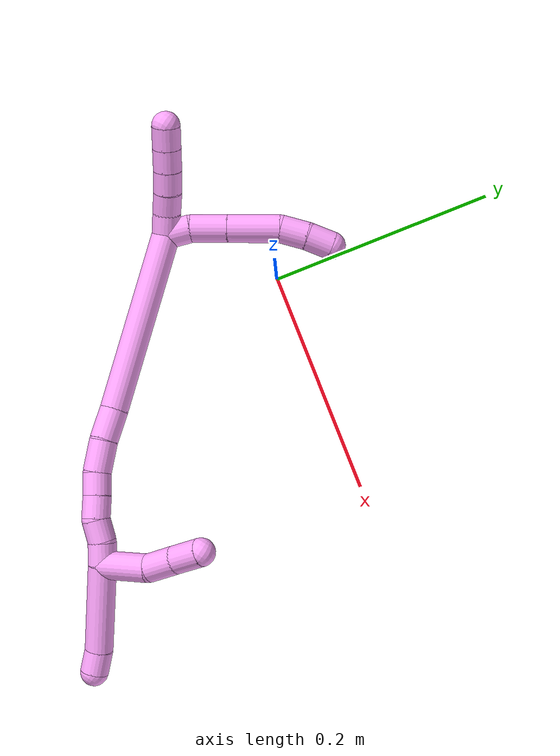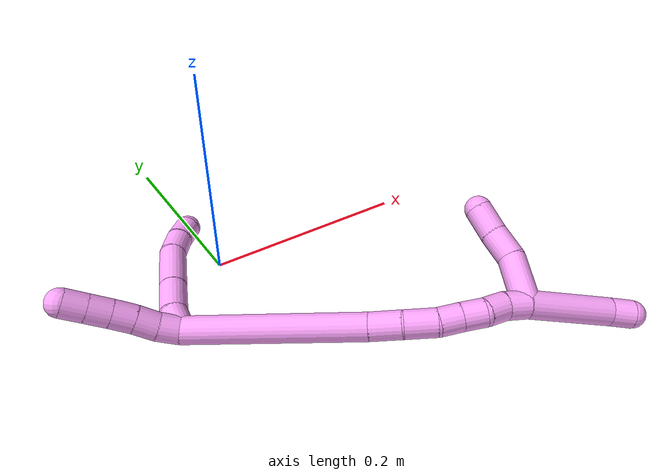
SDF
<sdf version="1.7">
 <world name="default">
  <model name="4">
   <static>0</static>
   <link name="4">
    <collision name="collision-cylinder-e_1_2_8">
     <pose>0.005518 0.005867 -0.008103 -2.51488 0.504012 -1.34289</pose>
     <geometry><cylinder><radius>0.0125</radius><length>0.02285</length></cylinder></geometry>
     <surface>
      <friction><ode><mu>1.16</mu><mu2>1.16</mu2><slip1>0</slip1><slip2>0</slip2></ode></friction>
      <contact><ode><kp>1e+06</kp><kd>1</kd><max_vel>0</max_vel><min_depth>0.001</min_depth></ode></contact>
     </surface>
    </collision>
    <visual name="visual-cylinder-e_1_2_8">
     <pose>0.005518 0.005867 -0.008103 -2.51488 0.504012 -1.34289</pose>
     <geometry><cylinder><radius>0.0125</radius><length>0.02285</length></cylinder></geometry>
     <material><ambient>1 0.65098 0.996078 1</ambient></material>
    </visual>
    <collision name="collision-cylinder-e_2_8_9">
     <pose>0.02141 0.02139 -0.024652 -2.28945 0.680093 -1.32421</pose>
     <geometry><cylinder><radius>0.0125</radius><length>0.032996</length></cylinder></geometry>
     <surface>
      <friction><ode><mu>1.16</mu><mu2>1.16</mu2><slip1>0</slip1><slip2>0</slip2></ode></friction>
      <contact><ode><kp>1e+06</kp><kd>1</kd><max_vel>0</max_vel><min_depth>0.001</min_depth></ode></contact>
     </surface>
    </collision>
    <visual name="visual-cylinder-e_2_8_9">
     <pose>0.02141 0.02139 -0.024652 -2.28945 0.680093 -1.32421</pose>
     <geometry><cylinder><radius>0.0125</radius><length>0.032996</length></cylinder></geometry>
     <material><ambient>1 0.65098 0.996078 1</ambient></material>
    </visual>
    <collision name="collision-cylinder-e_3_9_10">
     <pose>0.046791 0.044396 -0.044966 -2.29751 0.698645 -1.3631</pose>
     <geometry><cylinder><radius>0.0125</radius><length>0.04666</length></cylinder></geometry>
     <surface>
      <friction><ode><mu>1.16</mu><mu2>1.16</mu2><slip1>0</slip1><slip2>0</slip2></ode></friction>
      <contact><ode><kp>1e+06</kp><kd>1</kd><max_vel>0</max_vel><min_depth>0.001</min_depth></ode></contact>
     </surface>
    </collision>
    <visual name="visual-cylinder-e_3_9_10">
     <pose>0.046791 0.044396 -0.044966 -2.29751 0.698645 -1.3631</pose>
     <geometry><cylinder><radius>0.0125</radius><length>0.04666</length></cylinder></geometry>
     <material><ambient>1 0.65098 0.996078 1</ambient></material>
    </visual>
    <collision name="collision-cylinder-e_4_10_11">
     <pose>0.071285 0.064374 -0.060378 -2.06176 0.901016 -1.35806</pose>
     <geometry><cylinder><radius>0.0125</radius><length>0.024207</length></cylinder></geometry>
     <surface>
      <friction><ode><mu>1.16</mu><mu2>1.16</mu2><slip1>0</slip1><slip2>0</slip2></ode></friction>
      <contact><ode><kp>1e+06</kp><kd>1</kd><max_vel>0</max_vel><min_depth>0.001</min_depth></ode></contact>
     </surface>
    </collision>
    <visual name="visual-cylinder-e_4_10_11">
     <pose>0.071285 0.064374 -0.060378 -2.06176 0.901016 -1.35806</pose>
     <geometry><cylinder><radius>0.0125</radius><length>0.024207</length></cylinder></geometry>
     <material><ambient>1 0.65098 0.996078 1</ambient></material>
    </visual>
    <collision name="collision-cylinder-e_5_11_6">
     <pose>0.090787 0.076422 -0.066347 -1.99158 1.03537 -1.44192</pose>
     <geometry><cylinder><radius>0.0125</radius><length>0.023287</length></cylinder></geometry>
     <surface>
      <friction><ode><mu>1.16</mu><mu2>1.16</mu2><slip1>0</slip1><slip2>0</slip2></ode></friction>
      <contact><ode><kp>1e+06</kp><kd>1</kd><max_vel>0</max_vel><min_depth>0.001</min_depth></ode></contact>
     </surface>
    </collision>
    <visual name="visual-cylinder-e_5_11_6">
     <pose>0.090787 0.076422 -0.066347 -1.99158 1.03537 -1.44192</pose>
     <geometry><cylinder><radius>0.0125</radius><length>0.023287</length></cylinder></geometry>
     <material><ambient>1 0.65098 0.996078 1</ambient></material>
    </visual>
    <collision name="collision-cylinder-e_1_2_12">
     <pose>-0.006342 0.001585 -0.007567 -2.9351 -0.686997 2.57766</pose>
     <geometry><cylinder><radius>0.0125</radius><length>0.02</length></cylinder></geometry>
     <surface>
      <friction><ode><mu>1.16</mu><mu2>1.16</mu2><slip1>0</slip1><slip2>0</slip2></ode></friction>
      <contact><ode><kp>1e+06</kp><kd>1</kd><max_vel>0</max_vel><min_depth>0.001</min_depth></ode></contact>
     </surface>
    </collision>
    <visual name="visual-cylinder-e_1_2_12">
     <pose>-0.006342 0.001585 -0.007567 -2.9351 -0.686997 2.57766</pose>
     <geometry><cylinder><radius>0.0125</radius><length>0.02</length></cylinder></geometry>
     <material><ambient>1 0.65098 0.996078 1</ambient></material>
    </visual>
    <collision name="collision-cylinder-e_2_12_13">
     <pose>-0.019283 0.006374 -0.021931 -2.70114 -0.720693 2.06946</pose>
     <geometry><cylinder><radius>0.0125</radius><length>0.02</length></cylinder></geometry>
     <surface>
      <friction><ode><mu>1.16</mu><mu2>1.16</mu2><slip1>0</slip1><slip2>0</slip2></ode></friction>
      <contact><ode><kp>1e+06</kp><kd>1</kd><max_vel>0</max_vel><min_depth>0.001</min_depth></ode></contact>
     </surface>
    </collision>
    <visual name="visual-cylinder-e_2_12_13">
     <pose>-0.019283 0.006374 -0.021931 -2.70114 -0.720693 2.06946</pose>
     <geometry><cylinder><radius>0.0125</radius><length>0.02</length></cylinder></geometry>
     <material><ambient>1 0.65098 0.996078 1</ambient></material>
    </visual>
    <collision name="collision-cylinder-e_3_13_14">
     <pose>-0.032772 0.012052 -0.035539 -2.79313 -0.760099 2.31154</pose>
     <geometry><cylinder><radius>0.0125</radius><length>0.02</length></cylinder></geometry>
     <surface>
      <friction><ode><mu>1.16</mu><mu2>1.16</mu2><slip1>0</slip1><slip2>0</slip2></ode></friction>
      <contact><ode><kp>1e+06</kp><kd>1</kd><max_vel>0</max_vel><min_depth>0.001</min_depth></ode></contact>
     </surface>
    </collision>
    <visual name="visual-cylinder-e_3_13_14">
     <pose>-0.032772 0.012052 -0.035539 -2.79313 -0.760099 2.31154</pose>
     <geometry><cylinder><radius>0.0125</radius><length>0.02</length></cylinder></geometry>
     <material><ambient>1 0.65098 0.996078 1</ambient></material>
    </visual>
    <collision name="collision-cylinder-e_4_14_15">
     <pose>-0.046746 0.016818 -0.049028 -2.81101 -0.787202 2.37766</pose>
     <geometry><cylinder><radius>0.0125</radius><length>0.02</length></cylinder></geometry>
     <surface>
      <friction><ode><mu>1.16</mu><mu2>1.16</mu2><slip1>0</slip1><slip2>0</slip2></ode></friction>
      <contact><ode><kp>1e+06</kp><kd>1</kd><max_vel>0</max_vel><min_depth>0.001</min_depth></ode></contact>
     </surface>
    </collision>
    <visual name="visual-cylinder-e_4_14_15">
     <pose>-0.046746 0.016818 -0.049028 -2.81101 -0.787202 2.37766</pose>
     <geometry><cylinder><radius>0.0125</radius><length>0.02</length></cylinder></geometry>
     <material><ambient>1 0.65098 0.996078 1</ambient></material>
    </visual>
    <collision name="collision-cylinder-e_5_15_5">
     <pose>-0.060922 0.021392 -0.062373 -2.81167 -0.788436 2.38027</pose>
     <geometry><cylinder><radius>0.0125</radius><length>0.02</length></cylinder></geometry>
     <surface>
      <friction><ode><mu>1.16</mu><mu2>1.16</mu2><slip1>0</slip1><slip2>0</slip2></ode></friction>
      <contact><ode><kp>1e+06</kp><kd>1</kd><max_vel>0</max_vel><min_depth>0.001</min_depth></ode></contact>
     </surface>
    </collision>
    <visual name="visual-cylinder-e_5_15_5">
     <pose>-0.060922 0.021392 -0.062373 -2.81167 -0.788436 2.38027</pose>
     <geometry><cylinder><radius>0.0125</radius><length>0.02</length></cylinder></geometry>
     <material><ambient>1 0.65098 0.996078 1</ambient></material>
    </visual>
    <collision name="collision-cylinder-e_1_2_16">
     <pose>0.022042 0.007733 0.077311 -0.099689 0.276429 -0.013878</pose>
     <geometry><cylinder><radius>0.0125</radius><length>0.161525</length></cylinder></geometry>
     <surface>
      <friction><ode><mu>1.16</mu><mu2>1.16</mu2><slip1>0</slip1><slip2>0</slip2></ode></friction>
      <contact><ode><kp>1e+06</kp><kd>1</kd><max_vel>0</max_vel><min_depth>0.001</min_depth></ode></contact>
     </surface>
    </collision>
    <visual name="visual-cylinder-e_1_2_16">
     <pose>0.022042 0.007733 0.077311 -0.099689 0.276429 -0.013878</pose>
     <geometry><cylinder><radius>0.0125</radius><length>0.161525</length></cylinder></geometry>
     <material><ambient>1 0.65098 0.996078 1</ambient></material>
    </visual>
    <collision name="collision-cylinder-e_2_16_17">
     <pose>0.046996 0.017622 0.168459 -0.154619 0.20501 -0.015936</pose>
     <geometry><cylinder><radius>0.0125</radius><length>0.028608</length></cylinder></geometry>
     <surface>
      <friction><ode><mu>1.16</mu><mu2>1.16</mu2><slip1>0</slip1><slip2>0</slip2></ode></friction>
      <contact><ode><kp>1e+06</kp><kd>1</kd><max_vel>0</max_vel><min_depth>0.001</min_depth></ode></contact>
     </surface>
    </collision>
    <visual name="visual-cylinder-e_2_16_17">
     <pose>0.046996 0.017622 0.168459 -0.154619 0.20501 -0.015936</pose>
     <geometry><cylinder><radius>0.0125</radius><length>0.028608</length></cylinder></geometry>
     <material><ambient>1 0.65098 0.996078 1</ambient></material>
    </visual>
    <collision name="collision-cylinder-e_3_17_18">
     <pose>0.054867 0.021567 0.195561 -0.133973 0.354852 -0.024058</pose>
     <geometry><cylinder><radius>0.0125</radius><length>0.028548</length></cylinder></geometry>
     <surface>
      <friction><ode><mu>1.16</mu><mu2>1.16</mu2><slip1>0</slip1><slip2>0</slip2></ode></friction>
      <contact><ode><kp>1e+06</kp><kd>1</kd><max_vel>0</max_vel><min_depth>0.001</min_depth></ode></contact>
     </surface>
    </collision>
    <visual name="visual-cylinder-e_3_17_18">
     <pose>0.054867 0.021567 0.195561 -0.133973 0.354852 -0.024058</pose>
     <geometry><cylinder><radius>0.0125</radius><length>0.028548</length></cylinder></geometry>
     <material><ambient>1 0.65098 0.996078 1</ambient></material>
    </visual>
    <collision name="collision-cylinder-e_4_18_19">
     <pose>0.06475 0.025914 0.217271 -0.294239 0.508929 -0.077051</pose>
     <geometry><cylinder><radius>0.0125</radius><length>0.02021</length></cylinder></geometry>
     <surface>
      <friction><ode><mu>1.16</mu><mu2>1.16</mu2><slip1>0</slip1><slip2>0</slip2></ode></friction>
      <contact><ode><kp>1e+06</kp><kd>1</kd><max_vel>0</max_vel><min_depth>0.001</min_depth></ode></contact>
     </surface>
    </collision>
    <visual name="visual-cylinder-e_4_18_19">
     <pose>0.06475 0.025914 0.217271 -0.294239 0.508929 -0.077051</pose>
     <geometry><cylinder><radius>0.0125</radius><length>0.02021</length></cylinder></geometry>
     <material><ambient>1 0.65098 0.996078 1</ambient></material>
    </visual>
    <collision name="collision-cylinder-e_5_19_20">
     <pose>0.074185 0.030873 0.234564 -0.264863 0.457317 -0.061984</pose>
     <geometry><cylinder><radius>0.0125</radius><length>0.020434</length></cylinder></geometry>
     <surface>
      <friction><ode><mu>1.16</mu><mu2>1.16</mu2><slip1>0</slip1><slip2>0</slip2></ode></friction>
      <contact><ode><kp>1e+06</kp><kd>1</kd><max_vel>0</max_vel><min_depth>0.001</min_depth></ode></contact>
     </surface>
    </collision>
    <visual name="visual-cylinder-e_5_19_20">
     <pose>0.074185 0.030873 0.234564 -0.264863 0.457317 -0.061984</pose>
     <geometry><cylinder><radius>0.0125</radius><length>0.020434</length></cylinder></geometry>
     <material><ambient>1 0.65098 0.996078 1</ambient></material>
    </visual>
    <collision name="collision-cylinder-e_6_20_21">
     <pose>0.085889 0.035843 0.249978 -0.373129 0.795273 -0.158231</pose>
     <geometry><cylinder><radius>0.0125</radius><length>0.020145</length></cylinder></geometry>
     <surface>
      <friction><ode><mu>1.16</mu><mu2>1.16</mu2><slip1>0</slip1><slip2>0</slip2></ode></friction>
      <contact><ode><kp>1e+06</kp><kd>1</kd><max_vel>0</max_vel><min_depth>0.001</min_depth></ode></contact>
     </surface>
    </collision>
    <visual name="visual-cylinder-e_6_20_21">
     <pose>0.085889 0.035843 0.249978 -0.373129 0.795273 -0.158231</pose>
     <geometry><cylinder><radius>0.0125</radius><length>0.020145</length></cylinder></geometry>
     <material><ambient>1 0.65098 0.996078 1</ambient></material>
    </visual>
    <collision name="collision-cylinder-e_7_21_1">
     <pose>0.09897 0.039335 0.264901 -0.109845 0.611016 -0.034675</pose>
     <geometry><cylinder><radius>0.0125</radius><length>0.020529</length></cylinder></geometry>
     <surface>
      <friction><ode><mu>1.16</mu><mu2>1.16</mu2><slip1>0</slip1><slip2>0</slip2></ode></friction>
      <contact><ode><kp>1e+06</kp><kd>1</kd><max_vel>0</max_vel><min_depth>0.001</min_depth></ode></contact>
     </surface>
    </collision>
    <visual name="visual-cylinder-e_7_21_1">
     <pose>0.09897 0.039335 0.264901 -0.109845 0.611016 -0.034675</pose>
     <geometry><cylinder><radius>0.0125</radius><length>0.020529</length></cylinder></geometry>
     <material><ambient>1 0.65098 0.996078 1</ambient></material>
    </visual>
    <collision name="collision-cylinder-e_1_1_22">
     <pose>0.128129 0.037884 0.305179 0.074198 0.62861 0.02413</pose>
     <geometry><cylinder><radius>0.0125</radius><length>0.079149</length></cylinder></geometry>
     <surface>
      <friction><ode><mu>1.16</mu><mu2>1.16</mu2><slip1>0</slip1><slip2>0</slip2></ode></friction>
      <contact><ode><kp>1e+06</kp><kd>1</kd><max_vel>0</max_vel><min_depth>0.001</min_depth></ode></contact>
     </surface>
    </collision>
    <visual name="visual-cylinder-e_1_1_22">
     <pose>0.128129 0.037884 0.305179 0.074198 0.62861 0.02413</pose>
     <geometry><cylinder><radius>0.0125</radius><length>0.079149</length></cylinder></geometry>
     <material><ambient>1 0.65098 0.996078 1</ambient></material>
    </visual>
    <collision name="collision-cylinder-e_2_22_4">
     <pose>0.156031 0.034854 0.346419 0.07038 0.460241 0.016494</pose>
     <geometry><cylinder><radius>0.0125</radius><length>0.020851</length></cylinder></geometry>
     <surface>
      <friction><ode><mu>1.16</mu><mu2>1.16</mu2><slip1>0</slip1><slip2>0</slip2></ode></friction>
      <contact><ode><kp>1e+06</kp><kd>1</kd><max_vel>0</max_vel><min_depth>0.001</min_depth></ode></contact>
     </surface>
    </collision>
    <visual name="visual-cylinder-e_2_22_4">
     <pose>0.156031 0.034854 0.346419 0.07038 0.460241 0.016494</pose>
     <geometry><cylinder><radius>0.0125</radius><length>0.020851</length></cylinder></geometry>
     <material><ambient>1 0.65098 0.996078 1</ambient></material>
    </visual>
    <collision name="collision-cylinder-e_1_1_23">
     <pose>0.114466 0.058724 0.264109 -2.03078 0.436218 -0.686058</pose>
     <geometry><cylinder><radius>0.0125</radius><length>0.045476</length></cylinder></geometry>
     <surface>
      <friction><ode><mu>1.16</mu><mu2>1.16</mu2><slip1>0</slip1><slip2>0</slip2></ode></friction>
      <contact><ode><kp>1e+06</kp><kd>1</kd><max_vel>0</max_vel><min_depth>0.001</min_depth></ode></contact>
     </surface>
    </collision>
    <visual name="visual-cylinder-e_1_1_23">
     <pose>0.114466 0.058724 0.264109 -2.03078 0.436218 -0.686058</pose>
     <geometry><cylinder><radius>0.0125</radius><length>0.045476</length></cylinder></geometry>
     <material><ambient>1 0.65098 0.996078 1</ambient></material>
    </visual>
    <collision name="collision-cylinder-e_2_23_24">
     <pose>0.127223 0.086977 0.246005 -2.31186 0.233119 -0.519687</pose>
     <geometry><cylinder><radius>0.0125</radius><length>0.027268</length></cylinder></geometry>
     <surface>
      <friction><ode><mu>1.16</mu><mu2>1.16</mu2><slip1>0</slip1><slip2>0</slip2></ode></friction>
      <contact><ode><kp>1e+06</kp><kd>1</kd><max_vel>0</max_vel><min_depth>0.001</min_depth></ode></contact>
     </surface>
    </collision>
    <visual name="visual-cylinder-e_2_23_24">
     <pose>0.127223 0.086977 0.246005 -2.31186 0.233119 -0.519687</pose>
     <geometry><cylinder><radius>0.0125</radius><length>0.027268</length></cylinder></geometry>
     <material><ambient>1 0.65098 0.996078 1</ambient></material>
    </visual>
    <collision name="collision-cylinder-e_3_24_3">
     <pose>0.132469 0.107459 0.228869 -2.22372 0.154437 -0.310647</pose>
     <geometry><cylinder><radius>0.0125</radius><length>0.027255</length></cylinder></geometry>
     <surface>
      <friction><ode><mu>1.16</mu><mu2>1.16</mu2><slip1>0</slip1><slip2>0</slip2></ode></friction>
      <contact><ode><kp>1e+06</kp><kd>1</kd><max_vel>0</max_vel><min_depth>0.001</min_depth></ode></contact>
     </surface>
    </collision>
    <visual name="visual-cylinder-e_3_24_3">
     <pose>0.132469 0.107459 0.228869 -2.22372 0.154437 -0.310647</pose>
     <geometry><cylinder><radius>0.0125</radius><length>0.027255</length></cylinder></geometry>
     <material><ambient>1 0.65098 0.996078 1</ambient></material>
    </visual>
    <collision name="collision-sphere-3">
     <pose>0.134565 0.118155 0.220689 0 -0 0</pose>
     <geometry><sphere><radius>0.0125</radius></sphere></geometry>
     <surface>
      <friction><ode><mu>1.16</mu><mu2>1.16</mu2><slip1>0</slip1><slip2>0</slip2></ode></friction>
      <contact><ode><kp>1e+06</kp><kd>1</kd><max_vel>0</max_vel><min_depth>0.001</min_depth></ode></contact>
     </surface>
    </collision>
    <visual name="visual-sphere-3">
     <pose>0.134565 0.118155 0.220689 0 -0 0</pose>
     <geometry><sphere><radius>0.0125</radius></sphere></geometry>
     <material><ambient>1 0.65098 0.996078 1</ambient></material>
    </visual>
    <collision name="collision-sphere-24">
     <pose>0.130373 0.096764 0.23705 0 -0 0</pose>
     <geometry><sphere><radius>0.0125</radius></sphere></geometry>
     <surface>
      <friction><ode><mu>1.16</mu><mu2>1.16</mu2><slip1>0</slip1><slip2>0</slip2></ode></friction>
      <contact><ode><kp>1e+06</kp><kd>1</kd><max_vel>0</max_vel><min_depth>0.001</min_depth></ode></contact>
     </surface>
    </collision>
    <visual name="visual-sphere-24">
     <pose>0.130373 0.096764 0.23705 0 -0 0</pose>
     <geometry><sphere><radius>0.0125</radius></sphere></geometry>
     <material><ambient>1 0.65098 0.996078 1</ambient></material>
    </visual>
    <collision name="collision-sphere-23">
     <pose>0.124073 0.07719 0.25496 0 -0 0</pose>
     <geometry><sphere><radius>0.0125</radius></sphere></geometry>
     <surface>
      <friction><ode><mu>1.16</mu><mu2>1.16</mu2><slip1>0</slip1><slip2>0</slip2></ode></friction>
      <contact><ode><kp>1e+06</kp><kd>1</kd><max_vel>0</max_vel><min_depth>0.001</min_depth></ode></contact>
     </surface>
    </collision>
    <visual name="visual-sphere-23">
     <pose>0.124073 0.07719 0.25496 0 -0 0</pose>
     <geometry><sphere><radius>0.0125</radius></sphere></geometry>
     <material><ambient>1 0.65098 0.996078 1</ambient></material>
    </visual>
    <collision name="collision-sphere-4">
     <pose>0.160661 0.034197 0.355736 0 -0 0</pose>
     <geometry><sphere><radius>0.0125</radius></sphere></geometry>
     <surface>
      <friction><ode><mu>1.16</mu><mu2>1.16</mu2><slip1>0</slip1><slip2>0</slip2></ode></friction>
      <contact><ode><kp>1e+06</kp><kd>1</kd><max_vel>0</max_vel><min_depth>0.001</min_depth></ode></contact>
     </surface>
    </collision>
    <visual name="visual-sphere-4">
     <pose>0.160661 0.034197 0.355736 0 -0 0</pose>
     <geometry><sphere><radius>0.0125</radius></sphere></geometry>
     <material><ambient>1 0.65098 0.996078 1</ambient></material>
    </visual>
    <collision name="collision-sphere-22">
     <pose>0.1514 0.035511 0.337101 0 -0 0</pose>
     <geometry><sphere><radius>0.0125</radius></sphere></geometry>
     <surface>
      <friction><ode><mu>1.16</mu><mu2>1.16</mu2><slip1>0</slip1><slip2>0</slip2></ode></friction>
      <contact><ode><kp>1e+06</kp><kd>1</kd><max_vel>0</max_vel><min_depth>0.001</min_depth></ode></contact>
     </surface>
    </collision>
    <visual name="visual-sphere-22">
     <pose>0.1514 0.035511 0.337101 0 -0 0</pose>
     <geometry><sphere><radius>0.0125</radius></sphere></geometry>
     <material><ambient>1 0.65098 0.996078 1</ambient></material>
    </visual>
    <collision name="collision-sphere-1">
     <pose>0.104859 0.040257 0.273258 0 -0 0</pose>
     <geometry><sphere><radius>0.0125</radius></sphere></geometry>
     <surface>
      <friction><ode><mu>1.16</mu><mu2>1.16</mu2><slip1>0</slip1><slip2>0</slip2></ode></friction>
      <contact><ode><kp>1e+06</kp><kd>1</kd><max_vel>0</max_vel><min_depth>0.001</min_depth></ode></contact>
     </surface>
    </collision>
    <visual name="visual-sphere-1">
     <pose>0.104859 0.040257 0.273258 0 -0 0</pose>
     <geometry><sphere><radius>0.0125</radius></sphere></geometry>
     <material><ambient>1 0.65098 0.996078 1</ambient></material>
    </visual>
    <collision name="collision-sphere-21">
     <pose>0.093081 0.038413 0.256544 0 -0 0</pose>
     <geometry><sphere><radius>0.0125</radius></sphere></geometry>
     <surface>
      <friction><ode><mu>1.16</mu><mu2>1.16</mu2><slip1>0</slip1><slip2>0</slip2></ode></friction>
      <contact><ode><kp>1e+06</kp><kd>1</kd><max_vel>0</max_vel><min_depth>0.001</min_depth></ode></contact>
     </surface>
    </collision>
    <visual name="visual-sphere-21">
     <pose>0.093081 0.038413 0.256544 0 -0 0</pose>
     <geometry><sphere><radius>0.0125</radius></sphere></geometry>
     <material><ambient>1 0.65098 0.996078 1</ambient></material>
    </visual>
    <collision name="collision-sphere-6">
     <pose>0.100801 0.081845 -0.068774 0 -0 0</pose>
     <geometry><sphere><radius>0.0125</radius></sphere></geometry>
     <surface>
      <friction><ode><mu>1.16</mu><mu2>1.16</mu2><slip1>0</slip1><slip2>0</slip2></ode></friction>
      <contact><ode><kp>1e+06</kp><kd>1</kd><max_vel>0</max_vel><min_depth>0.001</min_depth></ode></contact>
     </surface>
    </collision>
    <visual name="visual-sphere-6">
     <pose>0.100801 0.081845 -0.068774 0 -0 0</pose>
     <geometry><sphere><radius>0.0125</radius></sphere></geometry>
     <material><ambient>1 0.65098 0.996078 1</ambient></material>
    </visual>
    <collision name="collision-sphere-11">
     <pose>0.080773 0.071 -0.06392 0 -0 0</pose>
     <geometry><sphere><radius>0.0125</radius></sphere></geometry>
     <surface>
      <friction><ode><mu>1.16</mu><mu2>1.16</mu2><slip1>0</slip1><slip2>0</slip2></ode></friction>
      <contact><ode><kp>1e+06</kp><kd>1</kd><max_vel>0</max_vel><min_depth>0.001</min_depth></ode></contact>
     </surface>
    </collision>
    <visual name="visual-sphere-11">
     <pose>0.080773 0.071 -0.06392 0 -0 0</pose>
     <geometry><sphere><radius>0.0125</radius></sphere></geometry>
     <material><ambient>1 0.65098 0.996078 1</ambient></material>
    </visual>
    <collision name="collision-sphere-10">
     <pose>0.061796 0.057747 -0.056835 0 -0 0</pose>
     <geometry><sphere><radius>0.0125</radius></sphere></geometry>
     <surface>
      <friction><ode><mu>1.16</mu><mu2>1.16</mu2><slip1>0</slip1><slip2>0</slip2></ode></friction>
      <contact><ode><kp>1e+06</kp><kd>1</kd><max_vel>0</max_vel><min_depth>0.001</min_depth></ode></contact>
     </surface>
    </collision>
    <visual name="visual-sphere-10">
     <pose>0.061796 0.057747 -0.056835 0 -0 0</pose>
     <geometry><sphere><radius>0.0125</radius></sphere></geometry>
     <material><ambient>1 0.65098 0.996078 1</ambient></material>
    </visual>
    <collision name="collision-sphere-9">
     <pose>0.031786 0.031045 -0.033097 0 -0 0</pose>
     <geometry><sphere><radius>0.0125</radius></sphere></geometry>
     <surface>
      <friction><ode><mu>1.16</mu><mu2>1.16</mu2><slip1>0</slip1><slip2>0</slip2></ode></friction>
      <contact><ode><kp>1e+06</kp><kd>1</kd><max_vel>0</max_vel><min_depth>0.001</min_depth></ode></contact>
     </surface>
    </collision>
    <visual name="visual-sphere-9">
     <pose>0.031786 0.031045 -0.033097 0 -0 0</pose>
     <geometry><sphere><radius>0.0125</radius></sphere></geometry>
     <material><ambient>1 0.65098 0.996078 1</ambient></material>
    </visual>
    <collision name="collision-sphere-2">
     <geometry><sphere><radius>0.0125</radius></sphere></geometry>
     <surface>
      <friction><ode><mu>1.16</mu><mu2>1.16</mu2><slip1>0</slip1><slip2>0</slip2></ode></friction>
      <contact><ode><kp>1e+06</kp><kd>1</kd><max_vel>0</max_vel><min_depth>0.001</min_depth></ode></contact>
     </surface>
    </collision>
    <visual name="visual-sphere-2">
     <geometry><sphere><radius>0.0125</radius></sphere></geometry>
     <material><ambient>1 0.65098 0.996078 1</ambient></material>
    </visual>
    <collision name="collision-sphere-19">
     <pose>0.069674 0.028473 0.225716 0 -0 0</pose>
     <geometry><sphere><radius>0.0125</radius></sphere></geometry>
     <surface>
      <friction><ode><mu>1.16</mu><mu2>1.16</mu2><slip1>0</slip1><slip2>0</slip2></ode></friction>
      <contact><ode><kp>1e+06</kp><kd>1</kd><max_vel>0</max_vel><min_depth>0.001</min_depth></ode></contact>
     </surface>
    </collision>
    <visual name="visual-sphere-19">
     <pose>0.069674 0.028473 0.225716 0 -0 0</pose>
     <geometry><sphere><radius>0.0125</radius></sphere></geometry>
     <material><ambient>1 0.65098 0.996078 1</ambient></material>
    </visual>
    <collision name="collision-sphere-8">
     <pose>0.011035 0.011735 -0.016206 0 -0 0</pose>
     <geometry><sphere><radius>0.0125</radius></sphere></geometry>
     <surface>
      <friction><ode><mu>1.16</mu><mu2>1.16</mu2><slip1>0</slip1><slip2>0</slip2></ode></friction>
      <contact><ode><kp>1e+06</kp><kd>1</kd><max_vel>0</max_vel><min_depth>0.001</min_depth></ode></contact>
     </surface>
    </collision>
    <visual name="visual-sphere-8">
     <pose>0.011035 0.011735 -0.016206 0 -0 0</pose>
     <geometry><sphere><radius>0.0125</radius></sphere></geometry>
     <material><ambient>1 0.65098 0.996078 1</ambient></material>
    </visual>
    <collision name="collision-sphere-12">
     <pose>-0.012684 0.00317 -0.015135 0 -0 0</pose>
     <geometry><sphere><radius>0.0125</radius></sphere></geometry>
     <surface>
      <friction><ode><mu>1.16</mu><mu2>1.16</mu2><slip1>0</slip1><slip2>0</slip2></ode></friction>
      <contact><ode><kp>1e+06</kp><kd>1</kd><max_vel>0</max_vel><min_depth>0.001</min_depth></ode></contact>
     </surface>
    </collision>
    <visual name="visual-sphere-12">
     <pose>-0.012684 0.00317 -0.015135 0 -0 0</pose>
     <geometry><sphere><radius>0.0125</radius></sphere></geometry>
     <material><ambient>1 0.65098 0.996078 1</ambient></material>
    </visual>
    <collision name="collision-sphere-13">
     <pose>-0.025882 0.009577 -0.028727 0 -0 0</pose>
     <geometry><sphere><radius>0.0125</radius></sphere></geometry>
     <surface>
      <friction><ode><mu>1.16</mu><mu2>1.16</mu2><slip1>0</slip1><slip2>0</slip2></ode></friction>
      <contact><ode><kp>1e+06</kp><kd>1</kd><max_vel>0</max_vel><min_depth>0.001</min_depth></ode></contact>
     </surface>
    </collision>
    <visual name="visual-sphere-13">
     <pose>-0.025882 0.009577 -0.028727 0 -0 0</pose>
     <geometry><sphere><radius>0.0125</radius></sphere></geometry>
     <material><ambient>1 0.65098 0.996078 1</ambient></material>
    </visual>
    <collision name="collision-sphere-14">
     <pose>-0.039662 0.014526 -0.042352 0 -0 0</pose>
     <geometry><sphere><radius>0.0125</radius></sphere></geometry>
     <surface>
      <friction><ode><mu>1.16</mu><mu2>1.16</mu2><slip1>0</slip1><slip2>0</slip2></ode></friction>
      <contact><ode><kp>1e+06</kp><kd>1</kd><max_vel>0</max_vel><min_depth>0.001</min_depth></ode></contact>
     </surface>
    </collision>
    <visual name="visual-sphere-14">
     <pose>-0.039662 0.014526 -0.042352 0 -0 0</pose>
     <geometry><sphere><radius>0.0125</radius></sphere></geometry>
     <material><ambient>1 0.65098 0.996078 1</ambient></material>
    </visual>
    <collision name="collision-sphere-15">
     <pose>-0.05383 0.019109 -0.055704 0 -0 0</pose>
     <geometry><sphere><radius>0.0125</radius></sphere></geometry>
     <surface>
      <friction><ode><mu>1.16</mu><mu2>1.16</mu2><slip1>0</slip1><slip2>0</slip2></ode></friction>
      <contact><ode><kp>1e+06</kp><kd>1</kd><max_vel>0</max_vel><min_depth>0.001</min_depth></ode></contact>
     </surface>
    </collision>
    <visual name="visual-sphere-15">
     <pose>-0.05383 0.019109 -0.055704 0 -0 0</pose>
     <geometry><sphere><radius>0.0125</radius></sphere></geometry>
     <material><ambient>1 0.65098 0.996078 1</ambient></material>
    </visual>
    <collision name="collision-sphere-5">
     <pose>-0.068015 0.023676 -0.069043 0 -0 0</pose>
     <geometry><sphere><radius>0.0125</radius></sphere></geometry>
     <surface>
      <friction><ode><mu>1.16</mu><mu2>1.16</mu2><slip1>0</slip1><slip2>0</slip2></ode></friction>
      <contact><ode><kp>1e+06</kp><kd>1</kd><max_vel>0</max_vel><min_depth>0.001</min_depth></ode></contact>
     </surface>
    </collision>
    <visual name="visual-sphere-5">
     <pose>-0.068015 0.023676 -0.069043 0 -0 0</pose>
     <geometry><sphere><radius>0.0125</radius></sphere></geometry>
     <material><ambient>1 0.65098 0.996078 1</ambient></material>
    </visual>
    <collision name="collision-sphere-16">
     <pose>0.044084 0.015465 0.154622 0 -0 0</pose>
     <geometry><sphere><radius>0.0125</radius></sphere></geometry>
     <surface>
      <friction><ode><mu>1.16</mu><mu2>1.16</mu2><slip1>0</slip1><slip2>0</slip2></ode></friction>
      <contact><ode><kp>1e+06</kp><kd>1</kd><max_vel>0</max_vel><min_depth>0.001</min_depth></ode></contact>
     </surface>
    </collision>
    <visual name="visual-sphere-16">
     <pose>0.044084 0.015465 0.154622 0 -0 0</pose>
     <geometry><sphere><radius>0.0125</radius></sphere></geometry>
     <material><ambient>1 0.65098 0.996078 1</ambient></material>
    </visual>
    <collision name="collision-sphere-17">
     <pose>0.049908 0.019779 0.182296 0 -0 0</pose>
     <geometry><sphere><radius>0.0125</radius></sphere></geometry>
     <surface>
      <friction><ode><mu>1.16</mu><mu2>1.16</mu2><slip1>0</slip1><slip2>0</slip2></ode></friction>
      <contact><ode><kp>1e+06</kp><kd>1</kd><max_vel>0</max_vel><min_depth>0.001</min_depth></ode></contact>
     </surface>
    </collision>
    <visual name="visual-sphere-17">
     <pose>0.049908 0.019779 0.182296 0 -0 0</pose>
     <geometry><sphere><radius>0.0125</radius></sphere></geometry>
     <material><ambient>1 0.65098 0.996078 1</ambient></material>
    </visual>
    <collision name="collision-sphere-18">
     <pose>0.059827 0.023354 0.208826 0 -0 0</pose>
     <geometry><sphere><radius>0.0125</radius></sphere></geometry>
     <surface>
      <friction><ode><mu>1.16</mu><mu2>1.16</mu2><slip1>0</slip1><slip2>0</slip2></ode></friction>
      <contact><ode><kp>1e+06</kp><kd>1</kd><max_vel>0</max_vel><min_depth>0.001</min_depth></ode></contact>
     </surface>
    </collision>
    <visual name="visual-sphere-18">
     <pose>0.059827 0.023354 0.208826 0 -0 0</pose>
     <geometry><sphere><radius>0.0125</radius></sphere></geometry>
     <material><ambient>1 0.65098 0.996078 1</ambient></material>
    </visual>
    <collision name="collision-sphere-20">
     <pose>0.078697 0.033272 0.243412 0 -0 0</pose>
     <geometry><sphere><radius>0.0125</radius></sphere></geometry>
     <surface>
      <friction><ode><mu>1.16</mu><mu2>1.16</mu2><slip1>0</slip1><slip2>0</slip2></ode></friction>
      <contact><ode><kp>1e+06</kp><kd>1</kd><max_vel>0</max_vel><min_depth>0.001</min_depth></ode></contact>
     </surface>
    </collision>
    <visual name="visual-sphere-20">
     <pose>0.078697 0.033272 0.243412 0 -0 0</pose>
     <geometry><sphere><radius>0.0125</radius></sphere></geometry>
     <material><ambient>1 0.65098 0.996078 1</ambient></material>
    </visual>
    <inertial>
     <pose>0.056362 0.032217 0.119001 0 -0 0</pose>
     <mass>0.75</mass>
     <inertia>
      <ixx>0.000397</ixx>
      <ixy>0</ixy>
      <ixz>0</ixz>
      <iyy>0.000417</iyy>
      <iyz>0</iyz>
      <izz>-0.000189</izz>
     </inertia>
    </inertial>
   </link>
   <pose>-0.071652 -0.07739 0.011487 1.38344 0.553368 0.526521</pose>
  </model>
 </world>
</sdf>
